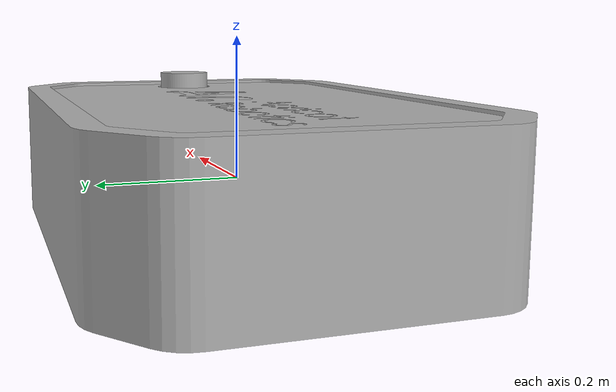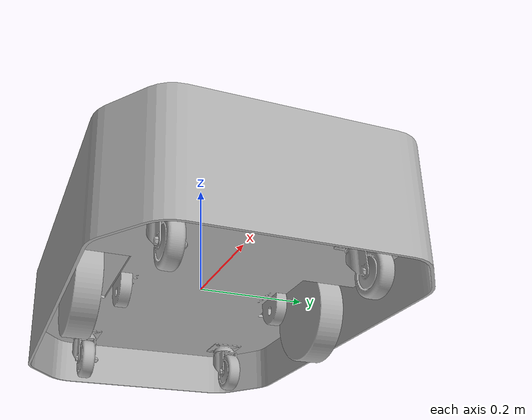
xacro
<?xml version="1.0" ?>
<robot name="ar1" xmlns:xacro="http://www.ros.org/wiki/xacro">

<xacro:include filename="$(find ar1_description)/urdf/materials.xacro" />
<xacro:include filename="$(find ar1_description)/urdf/ar1.trans" />
<xacro:include filename="$(find ar1_description)/urdf/ar1.gazebo" />

<!-- Dummy lidar link for plugin -->
<link name="lidar_link">
</link>

<!-- Dummy lidar joint -->
<joint name="lidar_dummy_joint" type="fixed">
  <origin xyz="0.0 0.0 .12" rpy="0 0 0" />
  <parent link="lidar_1"/>
  <child link="lidar_link" />
</joint>

<link name="base_link">
  <inertial>
    <origin xyz="-0.005559722499310211 8.478267444090186e-17 0.0025" rpy="0 0 0"/>
    <mass value="13.473570549169931"/>
    <inertia ixx="0.247816" iyy="0.725608" izz="0.973368" ixy="0.0" iyz="0.0" ixz="0.0"/>
  </inertial>
  <visual>
    <origin xyz="0 0 0" rpy="0 0 0"/>
    <geometry>
      <mesh filename="package://ar1_description/meshes/base_link.stl" scale="0.001 0.001 0.001"/>
    </geometry>
    <material name="silver"/>
  </visual>
  <collision>
    <origin xyz="0 0 0" rpy="0 0 0"/>
    <geometry>
      <mesh filename="package://ar1_description/meshes/base_link.stl" scale="0.001 0.001 0.001"/>
    </geometry>
  </collision>
</link>

<link name="drive_wheel_bracket_left_1">
  <inertial>
    <origin xyz="-0.012999999999986748 0.020000000000000046 -0.022013913452018436" rpy="0 0 0"/>
    <mass value="0.3924130918816367"/>
    <inertia ixx="8.5e-05" iyy="0.000196" izz="0.000138" ixy="-0.0" iyz="-0.0" ixz="-0.0"/>
  </inertial>
  <visual>
    <origin xyz="-0.013 -0.125 -0.0" rpy="0 0 0"/>
    <geometry>
      <mesh filename="package://ar1_description/meshes/drive_wheel_bracket_left_1.stl" scale="0.001 0.001 0.001"/>
    </geometry>
    <material name="silver"/>
  </visual>
  <collision>
    <origin xyz="-0.013 -0.125 -0.0" rpy="0 0 0"/>
    <geometry>
      <mesh filename="package://ar1_description/meshes/drive_wheel_bracket_left_1.stl" scale="0.001 0.001 0.001"/>
    </geometry>
  </collision>
</link>

<link name="drive_wheel_bracket_right_1">
  <inertial>
    <origin xyz="-0.012999999999986748 -0.020000000000000046 -0.022013913452018367" rpy="0 0 0"/>
    <mass value="0.3924130918816367"/>
    <inertia ixx="8.5e-05" iyy="0.000196" izz="0.000138" ixy="-0.0" iyz="-0.0" ixz="-0.0"/>
  </inertial>
  <visual>
    <origin xyz="-0.013 0.125 -0.0" rpy="0 0 0"/>
    <geometry>
      <mesh filename="package://ar1_description/meshes/drive_wheel_bracket_right_1.stl" scale="0.001 0.001 0.001"/>
    </geometry>
    <material name="silver"/>
  </visual>
  <collision>
    <origin xyz="-0.013 0.125 -0.0" rpy="0 0 0"/>
    <geometry>
      <mesh filename="package://ar1_description/meshes/drive_wheel_bracket_right_1.stl" scale="0.001 0.001 0.001"/>
    </geometry>
  </collision>
</link>

<link name="caster_front_left_1">
  <inertial>
    <origin xyz="0.021081833227837632 -0.04996287933977797 -0.059552380235665725" rpy="0 0 0"/>
    <mass value="0.7818323769298068"/>
    <inertia ixx="0.000725" iyy="0.001027" izz="0.000456" ixy="-0.0" iyz="0.0" ixz="0.000214"/>
  </inertial>
  <visual>
    <origin xyz="-0.287845 -0.205 -0.0" rpy="0 0 0"/>
    <geometry>
      <mesh filename="package://ar1_description/meshes/caster_front_left_1.stl" scale="0.001 0.001 0.001"/>
    </geometry>
    <material name="silver"/>
  </visual>
  <collision>
    <origin xyz="-0.287845 -0.205 -0.0" rpy="0 0 0"/>
    <geometry>
      <mesh filename="package://ar1_description/meshes/caster_front_left_1.stl" scale="0.001 0.001 0.001"/>
    </geometry>
  </collision>
</link>

<link name="caster_back_left_1">
  <inertial>
    <origin xyz="0.02108260824199909 -0.049962879339778055 -0.05955238023566574" rpy="0 0 0"/>
    <mass value="0.7818323769298068"/>
    <inertia ixx="0.000725" iyy="0.001027" izz="0.000456" ixy="-0.0" iyz="0.0" ixz="0.000214"/>
  </inertial>
  <visual>
    <origin xyz="0.287845 -0.205 -0.0" rpy="0 0 0"/>
    <geometry>
      <mesh filename="package://ar1_description/meshes/caster_back_left_1.stl" scale="0.001 0.001 0.001"/>
    </geometry>
    <material name="silver"/>
  </visual>
  <collision>
    <origin xyz="0.287845 -0.205 -0.0" rpy="0 0 0"/>
    <geometry>
      <mesh filename="package://ar1_description/meshes/caster_back_left_1.stl" scale="0.001 0.001 0.001"/>
    </geometry>
  </collision>
</link>

<link name="caster_front_right_1">
  <inertial>
    <origin xyz="0.02108183322783813 0.050037120660218815 -0.05955238023566576" rpy="0 0 0"/>
    <mass value="0.7818323769298068"/>
    <inertia ixx="0.000725" iyy="0.001027" izz="0.000456" ixy="-0.0" iyz="0.0" ixz="0.000214"/>
  </inertial>
  <visual>
    <origin xyz="-0.287845 0.205 -0.0" rpy="0 0 0"/>
    <geometry>
      <mesh filename="package://ar1_description/meshes/caster_front_right_1.stl" scale="0.001 0.001 0.001"/>
    </geometry>
    <material name="silver"/>
  </visual>
  <collision>
    <origin xyz="-0.287845 0.205 -0.0" rpy="0 0 0"/>
    <geometry>
      <mesh filename="package://ar1_description/meshes/caster_front_right_1.stl" scale="0.001 0.001 0.001"/>
    </geometry>
  </collision>
</link>

<link name="caster_back_right_1">
  <inertial>
    <origin xyz="0.02108260824199909 0.05003712066021826 -0.05955238023566574" rpy="0 0 0"/>
    <mass value="0.7818323769298068"/>
    <inertia ixx="0.000725" iyy="0.001027" izz="0.000456" ixy="-0.0" iyz="0.0" ixz="0.000214"/>
  </inertial>
  <visual>
    <origin xyz="0.287845 0.205 -0.0" rpy="0 0 0"/>
    <geometry>
      <mesh filename="package://ar1_description/meshes/caster_back_right_1.stl" scale="0.001 0.001 0.001"/>
    </geometry>
    <material name="silver"/>
  </visual>
  <collision>
    <origin xyz="0.287845 0.205 -0.0" rpy="0 0 0"/>
    <geometry>
      <mesh filename="package://ar1_description/meshes/caster_back_right_1.stl" scale="0.001 0.001 0.001"/>
    </geometry>
  </collision>
</link>

<link name="outer_body_1_1">
  <inertial>
    <origin xyz="-0.002130729408293789 -2.1384314998579254e-15 0.05240276292973794" rpy="0 0 0"/>
    <mass value="35.15665247678721"/>
    <inertia ixx="1.415267" iyy="2.662894" izz="3.798123" ixy="-0.0" iyz="-0.0" ixz="0.003753"/>
  </inertial>
  <visual>
    <origin xyz="-0.0 -0.0 -0.005" rpy="0 0 0"/>
    <geometry>
      <mesh filename="package://ar1_description/meshes/outer_body_1_1.stl" scale="0.001 0.001 0.001"/>
    </geometry>
    <material name="silver"/>
  </visual>
  <collision>
    <origin xyz="-0.0 -0.0 -0.005" rpy="0 0 0"/>
    <geometry>
      <mesh filename="package://ar1_description/meshes/outer_body_1_1.stl" scale="0.001 0.001 0.001"/>
    </geometry>
  </collision>
</link>

<link name="outer_body_2_1">
  <inertial>
    <origin xyz="-0.005947186083510445 -0.0003326593358035886 0.0002500000000000002" rpy="0 0 0"/>
    <mass value="1.2030304448634093"/>
    <inertia ixx="0.021334" iyy="0.052144" izz="0.073477" ixy="7e-06" iyz="-0.0" ixz="0.0"/>
  </inertial>
  <visual>
    <origin xyz="-0.0 -0.0 -0.11" rpy="0 0 0"/>
    <geometry>
      <mesh filename="package://ar1_description/meshes/outer_body_2_1.stl" scale="0.001 0.001 0.001"/>
    </geometry>
    <material name="silver"/>
  </visual>
  <collision>
    <origin xyz="-0.0 -0.0 -0.11" rpy="0 0 0"/>
    <geometry>
      <mesh filename="package://ar1_description/meshes/outer_body_2_1.stl" scale="0.001 0.001 0.001"/>
    </geometry>
  </collision>
</link>

<link name="lidar_1">
  <inertial>
    <origin xyz="-1.1102230246251565e-16 1.0573075148748461e-16 0.08999999999999996" rpy="0 0 0"/>
    <mass value="3.156672298327024"/>
    <inertia ixx="0.002946" iyy="0.002946" izz="0.002525" ixy="-0.0" iyz="-0.0" ixz="-0.0"/>
  </inertial>
  <visual>
    <origin xyz="-0.3 -0.0 -0.005" rpy="0 0 0"/>
    <geometry>
      <mesh filename="package://ar1_description/meshes/lidar_1.stl" scale="0.001 0.001 0.001"/>
    </geometry>
    <material name="silver"/>
  </visual>
  <collision>
    <origin xyz="-0.3 -0.0 -0.005" rpy="0 0 0"/>
    <geometry>
      <mesh filename="package://ar1_description/meshes/lidar_1.stl" scale="0.001 0.001 0.001"/>
    </geometry>
  </collision>
</link>

<link name="wheel_left_1">
  <inertial>
    <origin xyz="-0.09924300000000004 -0.23749999999999993 -0.050000000000000364" rpy="0 0 0"/>
    <mass value="8.296271803811733"/>
    <inertia ixx="0.016903" iyy="0.031011" izz="0.016903" ixy="-0.0" iyz="-0.0" ixz="0.0"/>
  </inertial>
  <visual>
    <origin xyz="-0.099243 -0.455 -0.025" rpy="0 0 0"/>
    <geometry>
      <mesh filename="package://ar1_description/meshes/wheel_left_1.stl" scale="0.001 0.001 0.001"/>
    </geometry>
    <material name="silver"/>
  </visual>
  <collision>
    <origin xyz="-0.099243 -0.455 -0.025" rpy="0 0 0"/>
    <geometry>
      <mesh filename="package://ar1_description/meshes/wheel_left_1.stl" scale="0.001 0.001 0.001"/>
    </geometry>
  </collision>
</link>

<link name="wheel_right_1">
  <inertial>
    <origin xyz="-0.09924299999999993 -0.0724999999999999 -0.05000000000000013" rpy="0 0 0"/>
    <mass value="8.296271803811733"/>
    <inertia ixx="0.016903" iyy="0.031011" izz="0.016903" ixy="-0.0" iyz="-0.0" ixz="-0.0"/>
  </inertial>
  <visual>
    <origin xyz="-0.099243 0.145 -0.025" rpy="0 0 0"/>
    <geometry>
      <mesh filename="package://ar1_description/meshes/wheel_right_1.stl" scale="0.001 0.001 0.001"/>
    </geometry>
    <material name="silver"/>
  </visual>
  <collision>
    <origin xyz="-0.099243 0.145 -0.025" rpy="0 0 0"/>
    <geometry>
      <mesh filename="package://ar1_description/meshes/wheel_right_1.stl" scale="0.001 0.001 0.001"/>
    </geometry>
  </collision>
</link>

<joint name="bracket_left" type="fixed">
  <origin xyz="0.013 0.125 0.0" rpy="0 0 0"/>
  <parent link="base_link"/>
  <child link="drive_wheel_bracket_left_1"/>
</joint>

<joint name="bracket_right" type="fixed">
  <origin xyz="0.013 -0.125 0.0" rpy="0 0 0"/>
  <parent link="base_link"/>
  <child link="drive_wheel_bracket_right_1"/>
</joint>

<joint name="caster_front_left" type="fixed">
  <origin xyz="0.287845 0.205 0.0" rpy="0 0 0"/>
  <parent link="base_link"/>
  <child link="caster_front_left_1"/>
</joint>

<joint name="caster_back_left" type="fixed">
  <origin xyz="-0.287845 0.205 0.0" rpy="0 0 0"/>
  <parent link="base_link"/>
  <child link="caster_back_left_1"/>
</joint>

<joint name="caster_front_right" type="fixed">
  <origin xyz="0.287845 -0.205 0.0" rpy="0 0 0"/>
  <parent link="base_link"/>
  <child link="caster_front_right_1"/>
</joint>

<joint name="caster_back_right" type="fixed">
  <origin xyz="-0.287845 -0.205 0.0" rpy="0 0 0"/>
  <parent link="base_link"/>
  <child link="caster_back_right_1"/>
</joint>

<joint name="outer_body_1" type="fixed">
  <origin xyz="0.0 0.0 0.005" rpy="0 0 0"/>
  <parent link="base_link"/>
  <child link="outer_body_1_1"/>
</joint>

<joint name="outer_body_2" type="fixed">
  <origin xyz="0.0 0.0 0.105" rpy="0 0 0"/>
  <parent link="outer_body_1_1"/>
  <child link="outer_body_2_1"/>
</joint>

<joint name="lidar_joint" type="fixed">
  <origin xyz="0.3 0.0 0.005" rpy="0 0 0"/>
  <parent link="base_link"/>
  <child link="lidar_1"/>
</joint>

<joint name="wheel_left" type="fixed">
  <origin xyz="0.086243 0.33 0.025" rpy="0 0 0"/>
  <parent link="drive_wheel_bracket_left_1"/>
  <child link="wheel_left_1"/>
</joint>

<joint name="wheel_right" type="fixed">
  <origin xyz="0.086243 -0.02 0.025" rpy="0 0 0"/>
  <parent link="drive_wheel_bracket_right_1"/>
  <child link="wheel_right_1"/>
</joint>

</robot>

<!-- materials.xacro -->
<robot name="ar1" xmlns:xacro="http://www.ros.org/wiki/xacro" >

<material name="silver">
  <color rgba="0.700 0.700 0.700 1.000"/>
</material>

</robot>

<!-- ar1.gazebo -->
<robot name="ar1" xmlns:xacro="http://www.ros.org/wiki/xacro" >

<xacro:property name="body_color" value="Gazebo/DarkGrey" />
<xacro:property name="body_1_color" value="Gazebo/Orange" />
<xacro:property name="body_2_color" value="Gazebo/DarkGrey" />
<xacro:property name="lidar_color" value="Gazebo/Red" />
<xacro:property name="wheel_color" value="Gazebo/Red" />
<xacro:property name="caster_color" value="Gazebo/DarkGrey" />

<gazebo>
  <plugin name="control" filename="libgazebo_ros_control.so"/>
</gazebo>

<!-- Lidar Plugin -->
<gazebo reference="lidar_link">
  <sensor type="ray" name="front_lidar">
    <pose>0 0 0 0 0 0</pose>
    <visualize>False</visualize>
    <update_rate>10</update_rate>
    <ray>
      <scan>
        <horizontal>
          <samples>720</samples>
          <resolution>1</resolution>
          <min_angle>-3.14</min_angle>
          <max_angle>3.14</max_angle>
        </horizontal>
      </scan>
      <range>
        <min>0.12</min>
        <max>30.0</max>
        <resolution>0.05</resolution>
      </range>
      <noise>
        <type>gaussian</type>
        <mean>0.0</mean>
        <stddev>0.01</stddev>
      </noise>
    </ray>
    <plugin name="gazebo_ros_head_hokuyo_controller" filename="libgazebo_ros_laser.so">
      <topicName>scan</topicName>
      <frameName>lidar_1</frameName>
    </plugin>
  </sensor>
</gazebo>

<!-- Planar move plugin -->
<gazebo>
  <plugin name="object_controller" filename="libgazebo_ros_planar_move.so">
    <commandTopic>cmd_vel</commandTopic>
    <odometryTopic>odom</odometryTopic>
    <odometryFrame>odom</odometryFrame>
    <odometryRate>20.0</odometryRate>
    <robotBaseFrame>base_link</robotBaseFrame>
  </plugin>
</gazebo>

<gazebo reference="base_link">
  <material>${body_color}</material>
  <mu1>0.2</mu1>
  <mu2>0.2</mu2>
  <selfCollide>true</selfCollide>
  <gravity>true</gravity>
</gazebo>

<gazebo reference="drive_wheel_bracket_left_1">
  <material>${body_color}</material>
  <mu1>0.2</mu1>
  <mu2>0.2</mu2>
  <selfCollide>true</selfCollide>
</gazebo>

<gazebo reference="drive_wheel_bracket_right_1">
  <material>${body_color}</material>
  <mu1>0.2</mu1>
  <mu2>0.2</mu2>
  <selfCollide>true</selfCollide>
</gazebo>

<gazebo reference="caster_front_left_1">
  <material>${caster_color}</material>
  <mu1>0.2</mu1>
  <mu2>0.2</mu2>
  <selfCollide>true</selfCollide>
</gazebo>

<gazebo reference="caster_back_left_1">
  <material>${caster_color}</material>
  <mu1>0.2</mu1>
  <mu2>0.2</mu2>
  <selfCollide>true</selfCollide>
</gazebo>

<gazebo reference="caster_front_right_1">
  <material>${caster_color}</material>
  <mu1>0.2</mu1>
  <mu2>0.2</mu2>
  <selfCollide>true</selfCollide>
</gazebo>

<gazebo reference="caster_back_right_1">
  <material>${caster_color}</material>
  <mu1>0.2</mu1>
  <mu2>0.2</mu2>
  <selfCollide>true</selfCollide>
</gazebo>

<gazebo reference="outer_body_1_1">
  <material>${body_1_color}</material>
  <mu1>0.2</mu1>
  <mu2>0.2</mu2>
  <selfCollide>true</selfCollide>
</gazebo>

<gazebo reference="outer_body_2_1">
  <material>${body_2_color}</material>
  <mu1>0.2</mu1>
  <mu2>0.2</mu2>
  <selfCollide>true</selfCollide>
</gazebo>

<gazebo reference="lidar_1">
  <material>${lidar_color}</material>
  <mu1>0.2</mu1>
  <mu2>0.2</mu2>
  <selfCollide>true</selfCollide>
</gazebo>

<gazebo reference="wheel_left_1">
  <material>${wheel_color}</material>
  <mu1>0.2</mu1>
  <mu2>0.2</mu2>
  <selfCollide>true</selfCollide>
</gazebo>

<gazebo reference="wheel_right_1">
  <material>${wheel_color}</material>
  <mu1>0.2</mu1>
  <mu2>0.2</mu2>
  <selfCollide>true</selfCollide>
</gazebo>

</robot>
